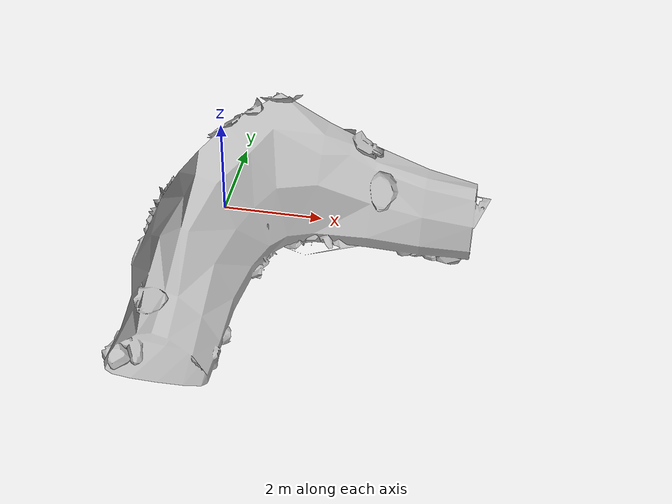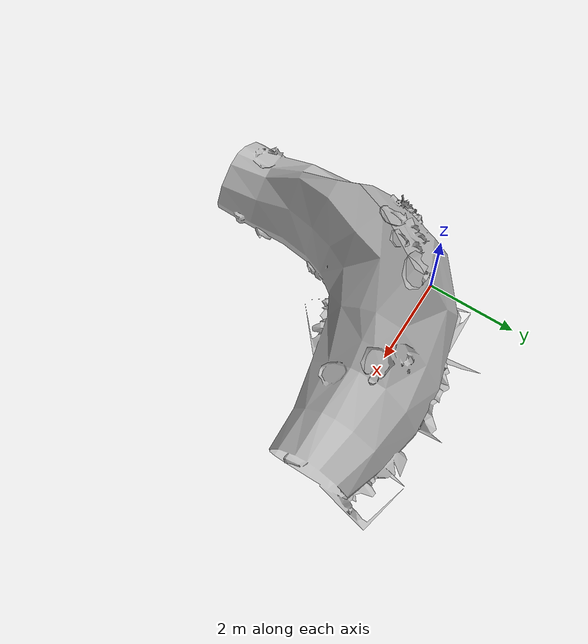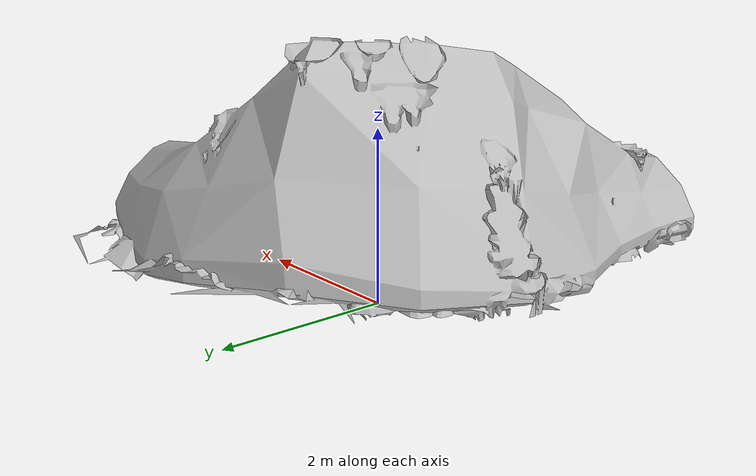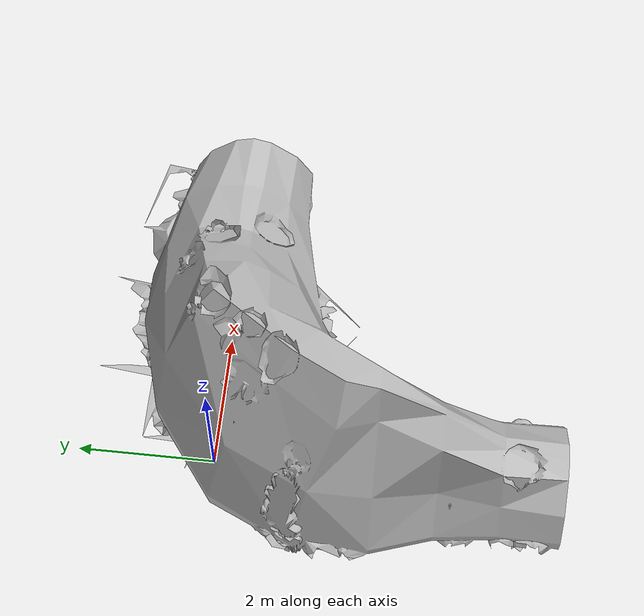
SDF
<?xml version="1.0"?>
<sdf version="1.6">
  <model name="cave_90deg">
    <static>true</static>
    <link name="base">
      <pose>0 0 0 0 0 0</pose>
      <collision name="base_collision">
        <pose>0 0 0 0 0 0</pose>
        <geometry>
          <mesh>
            <uri>model://cave_90deg/meshes/cave_90deg_collider.dae</uri>
          </mesh>
        </geometry>
      </collision>
      <visual name="base_visual">
        <pose>0 0 0 0 0 0</pose>
        <cast_shadows>false</cast_shadows>
        <geometry>
          <mesh>
            <uri>model://cave_90deg/meshes/cave_90deg.dae</uri>
          </mesh>
        </geometry>
      </visual>
    </link>
  </model>
</sdf>
